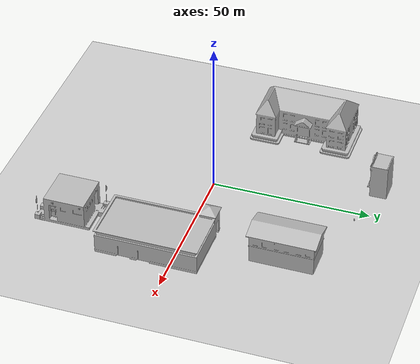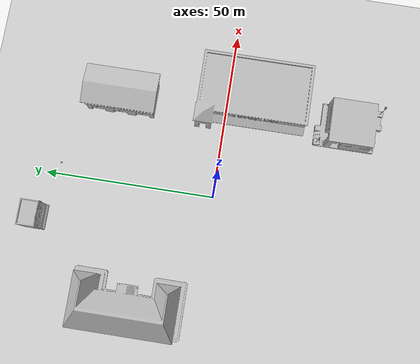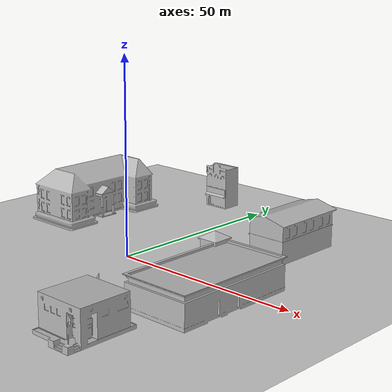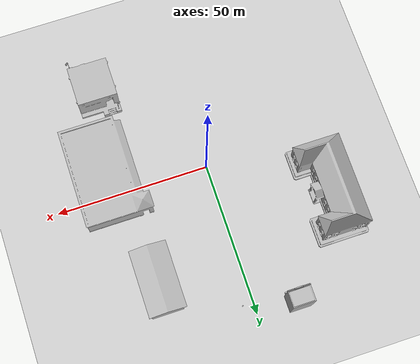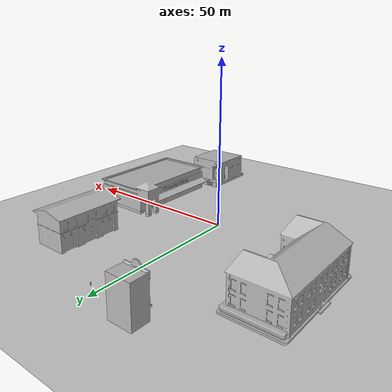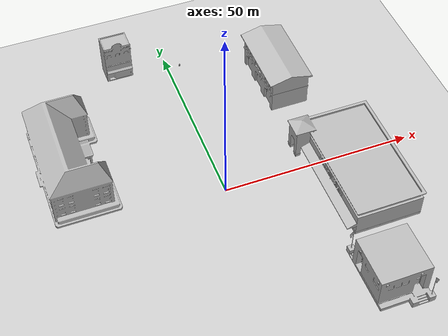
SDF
<sdf version="1.9">
 <world name="town_world">
  <gravity>0 0 -9.8</gravity>
  <magnetic_field>6e-06 2.3e-05 -4.2e-05</magnetic_field>
  <atmosphere type="adiabatic"/>
  <physics type="ode">
   <max_step_size>0.001</max_step_size>
   <real_time_factor>1</real_time_factor>
   <real_time_update_rate>1000</real_time_update_rate>
  </physics>
  <scene><ambient>0.4 0.4 0.4 1</ambient><background>0.7 0.7 0.7 1</background><shadows>true</shadows></scene>
  <audio><device>default</device></audio>
  <spherical_coordinates>
   <surface_model>EARTH_WGS84</surface_model>
   <latitude_deg>0</latitude_deg>
   <longitude_deg>0</longitude_deg>
   <elevation>0</elevation>
   <heading_deg>0</heading_deg>
  </spherical_coordinates>
  <model name="ground_plane">
   <static>true</static>
   <link name="ground">
    <collision name="collision">
     <geometry><plane><normal>0 0 1</normal><size>150 150</size></plane></geometry>
    </collision>
    <visual name="visual">
     <geometry><plane><normal>0 0 1</normal><size>150 150</size></plane></geometry>
     <material>
      <ambient>0.8 0.8 0.8 1</ambient>
      <diffuse>0.8 0.8 0.8 1</diffuse>
      <specular>0.8 0.8 0.8 1</specular>
      <emissive>0 0 0 1</emissive>
     </material>
    </visual>
    <inertial>
     <mass>1</mass>
     <inertia><ixx>1</ixx><ixy>0</ixy><ixz>0</ixz><iyy>1</iyy><iyz>0</iyz><izz>1</izz></inertia>
    </inertial>
   </link>
  </model>
  <model name="school">
   <static>true</static>
   <link name="link">
    <collision name="collision">
     <geometry>
      <mesh><uri>https://fuel.gazebosim.org/1.0/openrobotics/models/school/3/files/meshes/school.dae</uri></mesh>
     </geometry>
    </collision>
    <visual name="visual">
     <geometry>
      <mesh><uri>https://fuel.gazebosim.org/1.0/openrobotics/models/school/3/files/meshes/school.dae</uri></mesh>
     </geometry>
    </visual>
    <inertial>
     <mass>1</mass>
     <inertia><ixx>1</ixx><ixy>0</ixy><ixz>0</ixz><iyy>1</iyy><iyz>0</iyz><izz>1</izz></inertia>
    </inertial>
   </link>
   <pose>-36.6395 19.9616 0 0 -0 1.5708</pose>
  </model>
  <model name="grocery_store">
   <static>true</static>
   <link name="link">
    <collision name="collision">
     <pose>0 0 4.046044867 0 0 0</pose>
     <geometry><box><size>32.1985 17.5425 8.09209</size></box></geometry>
    </collision>
    <visual name="visual">
     <pose>0 -1.961551703 0 0 0 0</pose>
     <geometry>
      <mesh>
       <uri>https://fuel.gazebosim.org/1.0/openrobotics/models/grocery store/3/files/meshes/grocery_store.dae</uri>
      </mesh>
     </geometry>
    </visual>
    <inertial>
     <mass>1</mass>
     <inertia><ixx>1</ixx><ixy>0</ixy><ixz>0</ixz><iyy>1</iyy><iyz>0</iyz><izz>1</izz></inertia>
    </inertial>
   </link>
   <pose>33.1363 -7.35147 0 0 -0 1.5708</pose>
  </model>
  <model name="fire_station">
   <static>true</static>
   <link name="link">
    <collision name="main">
     <pose>0 -0.135 5 0 0 0</pose>
     <geometry><box><size>19.98 9.68 10</size></box></geometry>
    </collision>
    <collision name="front_top">
     <pose>0 4.957 7.0 0 0 0</pose>
     <geometry><box><size>20 0.515 6</size></box></geometry>
    </collision>
    <collision name="column_0">
     <pose>9.333 4.957 2.0 0 0 0</pose>
     <geometry><box><size>1.315 0.515 4</size></box></geometry>
    </collision>
    <collision name="column_1">
     <pose>3.33 4.957 2.0 0 0 0</pose>
     <geometry><box><size>2.63 0.515 4</size></box></geometry>
    </collision>
    <collision name="column_2">
     <pose>-3.33 4.957 2.0 0 0 0</pose>
     <geometry><box><size>2.63 0.515 4</size></box></geometry>
    </collision>
    <collision name="column_3">
     <pose>-9.333 4.957 2.0 0 0 0</pose>
     <geometry><box><size>1.315 0.515 4</size></box></geometry>
    </collision>
    <collision name="roof_back">
     <pose>0 -2.742 10.467 0.25 0 0</pose>
     <geometry><box><size>21.47 6.12 0.28</size></box></geometry>
    </collision>
    <collision name="roof_front">
     <pose>0 3.12 10.467 -0.25 0 0</pose>
     <geometry><box><size>21.47 6.12 0.28</size></box></geometry>
    </collision>
    <collision name="roof_base">
     <pose>0 0.188 9.705 0 0 0</pose>
     <geometry><box><size>21.47 11.86 0.28</size></box></geometry>
    </collision>
    <collision name="roof_filling_0">
     <pose>0 0.188 9.985 0 0 0</pose>
     <geometry><box><size>21.47 9.53 0.28</size></box></geometry>
    </collision>
    <collision name="roof_filling_1">
     <pose>0 0.188 10.14 0 0 0</pose>
     <geometry><box><size>21.47 8.41 0.28</size></box></geometry>
    </collision>
    <collision name="roof_filling_2">
     <pose>0 0.188 10.42 0 0 0</pose>
     <geometry><box><size>21.47 6.25 0.28</size></box></geometry>
    </collision>
    <collision name="roof_filling_3">
     <pose>0 0.188 10.7 0 0 0</pose>
     <geometry><box><size>21.47 4.05 0.28</size></box></geometry>
    </collision>
    <collision name="roof_filling_4">
     <pose>0 0.188 10.98 0 0 0</pose>
     <geometry><box><size>21.47 1.83 0.28</size></box></geometry>
    </collision>
    <visual name="visual">
     <geometry>
      <mesh>
       <uri>https://fuel.gazebosim.org/1.0/openrobotics/models/fire station/3/files/meshes/fire_station.dae</uri>
      </mesh>
     </geometry>
    </visual>
    <inertial>
     <mass>1</mass>
     <inertia><ixx>1</ixx><ixy>0</ixy><ixz>0</ixz><iyy>1</iyy><iyz>0</iyz><izz>1</izz></inertia>
    </inertial>
   </link>
   <pose>26.3512 31.3209 0 0 -0 1.5708</pose>
  </model>
  <model name="fire_hydrant">
   <static>true</static>
   <link name="link">
    <collision name="collision">
     <geometry>
      <mesh>
       <uri>https://fuel.gazebosim.org/1.0/openrobotics/models/fire hydrant/3/files/meshes/fire_hydrant.dae</uri>
      </mesh>
     </geometry>
    </collision>
    <visual name="visual">
     <geometry>
      <mesh>
       <uri>https://fuel.gazebosim.org/1.0/openrobotics/models/fire hydrant/3/files/meshes/fire_hydrant.dae</uri>
      </mesh>
     </geometry>
    </visual>
    <inertial>
     <mass>1</mass>
     <inertia><ixx>1</ixx><ixy>0</ixy><ixz>0</ixz><iyy>1</iyy><iyz>0</iyz><izz>1</izz></inertia>
    </inertial>
   </link>
   <pose>3.48085 46.1993 0 0 -0 0</pose>
  </model>
  <model name="police_station">
   <static>true</static>
   <link name="link">
    <collision name="collision_main">
     <pose>0 0 4.289977323 0 0 0</pose>
     <geometry><box><size>13.037 13.037 8.57995</size></box></geometry>
    </collision>
    <collision name="collision_landing">
     <pose>0 0 0.464086321 0 0 0</pose>
     <geometry><box><size>13.037 16.2446 0.928173</size></box></geometry>
    </collision>
    <visual name="visual">
     <geometry>
      <mesh>
       <uri>https://fuel.gazebosim.org/1.0/openrobotics/models/police station/3/files/meshes/police_station.dae</uri>
      </mesh>
     </geometry>
    </visual>
    <inertial>
     <mass>1</mass>
     <inertia><ixx>1</ixx><ixy>0</ixy><ixz>0</ixz><iyy>1</iyy><iyz>0</iyz><izz>1</izz></inertia>
    </inertial>
   </link>
   <pose>26.8834 -36.6556 0 0 -0 0</pose>
  </model>
  <model name="salon">
   <static>true</static>
   <link name="link">
    <collision name="collision">
     <pose>0 0 5.694693596 0 0 0</pose>
     <geometry><box><size>7.21297 5.37875 11.3894</size></box></geometry>
    </collision>
    <visual name="visual">
     <pose>0 -0.90360491 0 0 0 0</pose>
     <geometry>
      <mesh><uri>https://fuel.gazebosim.org/1.0/openrobotics/models/salon/3/files/meshes/salon.dae</uri></mesh>
     </geometry>
    </visual>
    <inertial>
     <mass>1</mass>
     <inertia><ixx>1</ixx><ixy>0</ixy><ixz>0</ixz><iyy>1</iyy><iyz>0</iyz><izz>1</izz></inertia>
    </inertial>
   </link>
   <pose>-13.3541 50.0752 0 0 -0 0</pose>
  </model>
  <light name="sun" type="directional">
   <pose>0 0 10 0 -0 0</pose>
   <intensity>1</intensity>
   <direction>-0.5 0.1 -0.9</direction>
   <diffuse>0.8 0.8 0.8 1</diffuse>
   <specular>0.2 0.2 0.2 1</specular>
   <attenuation>
    <range>1000</range>
    <linear>0.01</linear>
    <constant>0.90000000000000002</constant>
    <quadratic>0.001</quadratic>
   </attenuation>
   <spot><inner_angle>0</inner_angle><outer_angle>0</outer_angle><falloff>0</falloff></spot>
  </light>
 </world>
</sdf>
